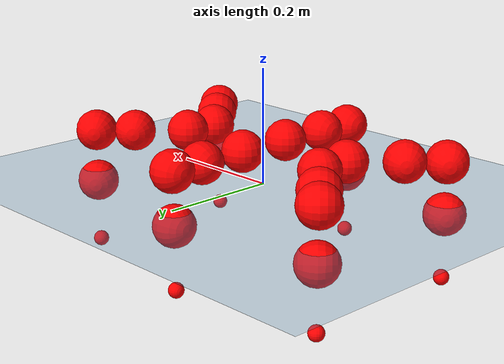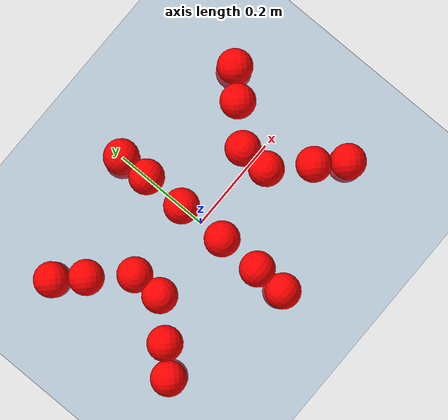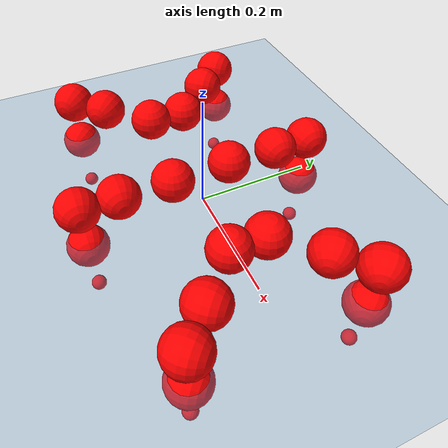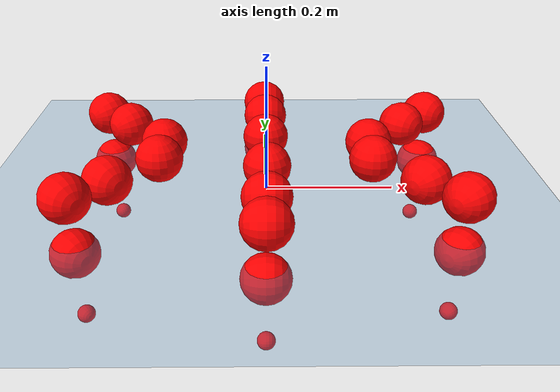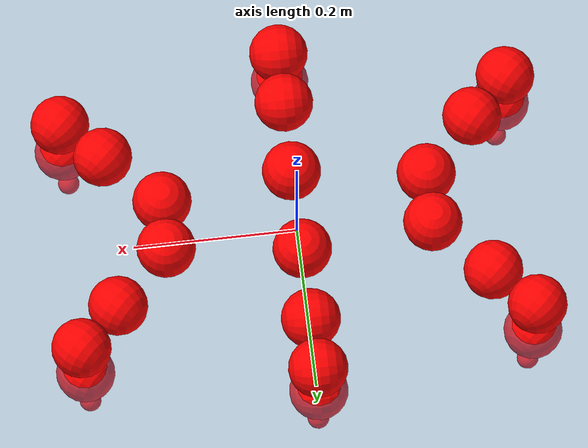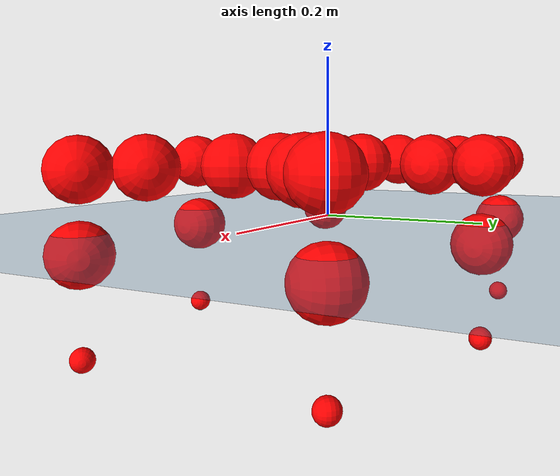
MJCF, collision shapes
<mujoco model="Golem">
  <compiler angle="radian" assetdir="assets" balanceinertia="true" inertiafromgeom="false"/>

  <option timestep="0.005" density="1.2" viscosity="2e-05"/>

  <size nkey="1"/>

  <visual>
    <quality shadowsize="8192"/>
    <map shadowclip="0.5"/>
  </visual>

  <default>
    <default class="/">
      <joint armature="0.01" damping="0.01" frictionloss="0.01"/>
      <geom contype="0" conaffinity="0" group="1" solref="-1000 -80"/>
      <site size="0.01 0.005 0.005" group="5"/>
      <general forcelimited="true" biastype="affine" gainprm="25" biasprm="0 -25 -0.5"/>
      <default class="visual">
        <geom type="mesh" group="2"/>
      </default>
      <default class="collision">
        <geom group="3"/>
      </default>
      <default class="foot">
        <geom size="0.01 0 0" condim="6" group="4" priority="1" solimp="0.015 1 0.01"/>
      </default>
      <default class="reward_collision_sphere">
        <geom group="5" rgba="1 0 0 1"/>
      </default>
    </default>
  </default>

  <asset>
    <texture type="skybox" colorspace="auto" name="//unnamed_texture_0" builtin="gradient" rgb1="0.95 0.95 0.95" rgb2="0.95 0.95 0.95" width="100" height="600"/>
    <texture type="2d" colorspace="auto" name="texplane" builtin="checker" rgb1="0.345 0.575 0.748" rgb2="0.345 0.575 0.748" markrgb="1 1 1" width="512" height="512"/>
    <material name="MatPlane" class="/" texture="texplane" texuniform="true" texrepeat="2 2" specular="0.9"/>
    <mesh name="body" class="/" file="body.stl" scale="0.001 0.001 0.001"/>
    <mesh name="coxa" class="/" file="coxa.stl" scale="0.001 0.001 0.001"/>
    <mesh name="femur" class="/" file="femur.stl" scale="0.001 0.001 0.001"/>
    <mesh name="tibia" class="/" file="tibia.stl" scale="0.001 0.001 0.001"/>
    <mesh name="tarsus" class="/" file="tarsus.stl" scale="0.001 0.001 0.001"/>
  </asset>

  <worldbody>
    <geom name="floor" class="/" size="100 100 0.125" type="plane" group="0" material="MatPlane"/>
    <light name="toplight_shadow" class="/" pos="0 0 5" dir="0.0990148 0.0990148 -0.990148" type="directional" ambient="0.04 0.04 0.04" diffuse="0.55 0.55 0.55" specular="0.12 0.12 0.12"/>
    <light name="toplight_fill" class="/" pos="0 0 5" dir="0.0990148 0.0990148 -0.990148" type="directional" castshadow="false" ambient="0.04 0.04 0.04" diffuse="0.3 0.3 0.3" specular="0.08 0.08 0.08"/>
    <body name="trunk" pos="-5.26064e-05 -0.000499926 0.000660463" quat="1 -7.74768e-06 2.09498e-05 -3.93012e-05">
      <inertial pos="-0.000489241 0.000574279 -0.00398546" quat="0.999997 -0.00164065 0.000271991 0.00178344" mass="2.64718" diaginertia="0.0115754 0.000893038 0.0120393"/>
      <joint name="//unnamed_joint_0" type="free"/>
      <geom name="//unnamed_geom_1" class="/" pos="0 0 0.0664191" quat="1 0 0 0" type="mesh" rgba="0.9 0.9 0.9 1" mesh="body"/>
      <site name="imu" class="/" pos="0.134067 0.00126481 0.110912" size="0.00893421"/>
      <camera name="track" class="/" pos="0 -1.22784 0" quat="0.707107 0.707107 0 0" mode="trackcom"/>
      <camera name="ego_camera" class="/" pos="0.13371 0 0.10378" quat="-0.5 -0.5 0.5 0.5"/>
      <body name="coxa_RR" pos="-0.182123 -0.052177 0.0684178" quat="0.383337 -7.35472e-05 -0.000333999 -0.923608">
        <inertial pos="-0.000147456 -0.000490886 0.00164177" quat="0.99999 7.44285e-05 -0.000640936 -0.00449287" mass="0.14368" diaginertia="0.0115642 0.000881336 0.012312"/>
        <joint name="coxa_joint_RR" class="/" pos="0 0 0" axis="0.000347583 -0.00442295 -0.99999" range="-3.15619 3.14688" armature="0.00911414" damping="0.00369456" frictionloss="0.00861164"/>
        <geom name="//unnamed_geom_2" class="/" type="mesh" rgba="0.2 0.2 0.2 1" mesh="coxa"/>
        <geom name="//unnamed_geom_3" class="reward_collision_sphere" size="0.0357368" pos="-0.0308562 0 0"/>
        <body name="femur_RR" pos="0.0619427 0.00182688 -0.000234075" quat="0.500238 -0.499461 0.500278 0.500022">
          <inertial pos="-7.83383e-05 0.00113421 -0.000911557" quat="0.999994 -0.00254428 0.000952733 0.0023529" mass="0.141655" diaginertia="0.0113112 0.000876264 0.0119398"/>
          <joint name="femur_joint_RR" class="/" pos="0 0 0" axis="0.000212439 -0.000978094 -0.999999" range="-3.14865 3.14851" armature="0.00904887" damping="0.00219937" frictionloss="0.00889305"/>
          <geom name="//unnamed_geom_4" class="/" type="mesh" rgba="0.9 0.9 0.9 1" mesh="femur"/>
          <geom name="//unnamed_geom_5" class="reward_collision_sphere" size="0.0357368"/>
          <body name="tibia_RR" pos="0.000510176 -0.067694 0.000870014" quat="-7.13236e-05 1 -1.38169e-05 8.87631e-06">
            <inertial pos="-0.000127748 0.00116684 0.000381023" quat="1 0.000101202 -0.000157849 -3.91288e-05" mass="0.143828" diaginertia="0.0115957 0.000877719 0.0120684"/>
            <joint name="tibia_joint_RR" class="/" pos="0 0 0" axis="-0.00126088 0.00480681 0.999988" range="-3.11963 3.14546" armature="0.0093678" damping="0" frictionloss="0.00966322"/>
            <geom name="//unnamed_geom_6" class="/" type="mesh" rgba="0.2 0.2 0.2 1" mesh="tibia"/>
            <geom name="//unnamed_geom_7" class="reward_collision_sphere" size="0.0357368"/>
            <body name="tarsus_RR" pos="0.0892948 1.49908e-05 -0.00174011" quat="1 -0.000270126 -0.000292483 4.24421e-05">
              <inertial pos="0.0603342 2.92608e-05 -0.000498086" quat="0.500533 0.499379 0.496682 0.503383" mass="0.141657" diaginertia="0.0114924 0.00086763 0.0121871"/>
              <joint name="tarsus_joint_RR" class="/" pos="0 0 0" axis="0.00135966 0.000170228 0.999999" range="-3.12095 3.13453" armature="0.00905341" damping="0.00354271" frictionloss="0.0091535"/>
              <geom name="//unnamed_geom_8" class="/" type="mesh" rgba="0.9 0.9 0.9 1" mesh="tarsus"/>
              <geom name="foot_1" class="foot" size="0.0087664" pos="0.115197 0 0" quat="0 -0.707107 0 0.707107"/>
              <geom name="//unnamed_geom_10" class="reward_collision_sphere" size="0.0357368"/>
              <geom name="//unnamed_geom_11" class="reward_collision_sphere" size="0.0134013" pos="0.110568 0 0"/>
              <site name="foot_1" class="foot" pos="0.115197 0 0" quat="0 -0.707107 0 0.707107" size="0.00893421"/>
            </body>
          </body>
        </body>
      </body>
      <body name="coxa_RM" pos="0.000845159 -0.0831534 0.0662421" quat="0.706981 -1.93823e-05 -0.000100868 -0.707233">
        <inertial pos="0.000516389 -0.000112379 1.22304e-05" quat="0.999975 -0.00623967 -0.0025534 0.00205654" mass="0.146972" diaginertia="0.0117013 0.00089968 0.0122372"/>
        <joint name="coxa_joint_RM" class="/" pos="0 0 0" axis="-0.000772599 0.00562022 -0.999984" range="-3.13861 3.15758" armature="0.00899611" damping="0.0126811" frictionloss="0.00865771"/>
        <geom name="//unnamed_geom_12" class="/" type="mesh" rgba="0.2 0.2 0.2 1" mesh="coxa"/>
        <geom name="//unnamed_geom_13" class="reward_collision_sphere" size="0.0357368" pos="-0.0308562 0 0"/>
        <body name="femur_RM" pos="0.0586483 -0.000842836 0.000161932" quat="0.500221 -0.4998 0.500013 0.499965">
          <inertial pos="-0.000106562 -0.000634846 9.13942e-05" quat="0.999997 -0.000830997 0.000713287 -0.00228061" mass="0.141105" diaginertia="0.011468 0.000876354 0.0121952"/>
          <joint name="femur_joint_RM" class="/" pos="0 0 0" axis="-0.000137701 0.000178817 -1" range="-3.13739 3.1195" armature="0.00870674" damping="0.00569222" frictionloss="0.00921687"/>
          <geom name="//unnamed_geom_14" class="/" type="mesh" rgba="0.9 0.9 0.9 1" mesh="femur"/>
          <geom name="//unnamed_geom_15" class="reward_collision_sphere" size="0.0357368"/>
          <body name="tibia_RM" pos="0.00119268 -0.0652101 -0.000728255" quat="-0.000116963 1 -0.000275413 0.000151326">
            <inertial pos="0.000100202 -0.000317459 -3.87732e-05" quat="0.999998 0.000798169 -0.0011184 -0.00123812" mass="0.144255" diaginertia="0.0115548 0.000869521 0.0121799"/>
            <joint name="tibia_joint_RM" class="/" pos="0 0 0" axis="0.00388054 -0.000859307 0.999992" range="-3.15665 3.12873" armature="0.0084534" damping="0.00539048" frictionloss="0.00934926"/>
            <geom name="//unnamed_geom_16" class="/" type="mesh" rgba="0.2 0.2 0.2 1" mesh="tibia"/>
            <geom name="//unnamed_geom_17" class="reward_collision_sphere" size="0.0357368"/>
            <body name="tarsus_RM" pos="0.0880948 -0.00128072 0.000956937" quat="1 -5.51508e-05 0.000183136 0.000128525">
              <inertial pos="0.0617823 0.000866083 0.000368208" quat="0.500249 0.499168 0.500381 0.500201" mass="0.143937" diaginertia="0.0116561 0.000881143 0.0121851"/>
              <joint name="tarsus_joint_RM" class="/" pos="0 0 0" axis="-0.00290973 0.00145313 0.999995" range="-3.15374 3.13194" armature="0.00935874" damping="0.00307226" frictionloss="0.00900231"/>
              <geom name="//unnamed_geom_18" class="/" type="mesh" rgba="0.9 0.9 0.9 1" mesh="tarsus"/>
              <geom name="foot_2" class="foot" size="0.00924856" pos="0.115197 0 0" quat="0 -0.707107 0 0.707107"/>
              <geom name="//unnamed_geom_20" class="reward_collision_sphere" size="0.0357368"/>
              <geom name="//unnamed_geom_21" class="reward_collision_sphere" size="0.0134013" pos="0.110568 0 0"/>
              <site name="foot_2" class="foot" pos="0.115197 0 0" quat="0 -0.707107 0 0.707107" size="0.00893421"/>
            </body>
          </body>
        </body>
      </body>
      <body name="coxa_RF" pos="0.182033 -0.0525996 0.0669185" quat="0.923854 -5.96012e-05 5.20151e-05 -0.382745">
        <inertial pos="-0.00089316 2.27652e-05 0.000278072" quat="0.999993 -0.000666464 0.00276853 -0.00237439" mass="0.143296" diaginertia="0.0117284 0.000896256 0.0122166"/>
        <joint name="coxa_joint_RF" class="/" pos="0 0 0" axis="0.00375947 -0.0012231 -0.999992" range="-3.13584 3.15236" armature="0.00873159" damping="0.0139646" frictionloss="0.0092495"/>
        <geom name="//unnamed_geom_22" class="/" type="mesh" rgba="0.2 0.2 0.2 1" mesh="coxa"/>
        <geom name="//unnamed_geom_23" class="reward_collision_sphere" size="0.0357368" pos="-0.0308562 0 0"/>
        <body name="femur_RF" pos="0.0615486 0.000383211 -0.000695177" quat="0.500031 -0.499878 0.500041 0.50005">
          <inertial pos="0.000657122 -0.000347641 0.000120238" quat="0.999989 -0.00431469 -0.00163259 0.000317979" mass="0.143496" diaginertia="0.0115909 0.000875085 0.0121453"/>
          <joint name="femur_joint_RF" class="/" pos="0 0 0" axis="0.000267291 0.00387346 -0.999992" range="-3.15827 3.13693" armature="0.009089" damping="0.00650624" frictionloss="0.00913948"/>
          <geom name="//unnamed_geom_24" class="/" type="mesh" rgba="0.9 0.9 0.9 1" mesh="femur"/>
          <geom name="//unnamed_geom_25" class="reward_collision_sphere" size="0.0357368"/>
          <body name="tibia_RF" pos="0.00115732 -0.0673722 -0.000176842" quat="-0.000463258 1 3.94778e-05 0.000219358">
            <inertial pos="-3.3262e-05 -0.000579768 -0.000167332" quat="0.999995 -0.000647084 0.00198779 0.00239674" mass="0.138193" diaginertia="0.0113771 0.00085159 0.0119883"/>
            <joint name="tibia_joint_RF" class="/" pos="0 0 0" axis="-0.00143604 -0.00184715 0.999997" range="-3.11991 3.13339" armature="0.00879961" damping="0" frictionloss="0.00930163"/>
            <geom name="//unnamed_geom_26" class="/" type="mesh" rgba="0.2 0.2 0.2 1" mesh="tibia"/>
            <geom name="//unnamed_geom_27" class="reward_collision_sphere" size="0.0357368"/>
            <body name="tarsus_RF" pos="0.0883254 0.000642242 -0.00039761" quat="1 3.65674e-05 -2.22911e-05 -7.59561e-05">
              <inertial pos="0.0608099 0.000554723 -0.000402833" quat="0.502017 0.498636 0.498078 0.501258" mass="0.144095" diaginertia="0.011787 0.000879854 0.0122616"/>
              <joint name="tarsus_joint_RF" class="/" pos="0 0 0" axis="-0.00980993 0.00302954 0.999947" range="-3.14986 3.13288" armature="0.00895695" damping="0.00297599" frictionloss="0.00853664"/>
              <geom name="//unnamed_geom_28" class="/" type="mesh" rgba="0.9 0.9 0.9 1" mesh="tarsus"/>
              <geom name="foot_3" class="foot" size="0.00864524" pos="0.115197 0 0" quat="0 -0.707107 0 0.707107"/>
              <geom name="//unnamed_geom_30" class="reward_collision_sphere" size="0.0357368"/>
              <geom name="//unnamed_geom_31" class="reward_collision_sphere" size="0.0134013" pos="0.110568 0 0"/>
              <site name="foot_3" class="foot" pos="0.115197 0 0" quat="0 -0.707107 0 0.707107" size="0.00893421"/>
            </body>
          </body>
        </body>
      </body>
      <body name="coxa_LR" pos="-0.182264 0.0541938 0.067294" quat="0.382952 -5.4468e-05 6.04951e-05 0.923768">
        <inertial pos="0.00121423 -0.000114228 0.000120687" quat="0.999999 0.000644105 0.00155443 0.000249907" mass="0.143583" diaginertia="0.0116329 0.000882807 0.0121101"/>
        <joint name="coxa_joint_LR" class="/" pos="0 0 0" axis="-0.00325988 -0.0015909 -0.999993" range="-3.11996 3.15395" armature="0.00883259" damping="0.0101185" frictionloss="0.00877064"/>
        <geom name="//unnamed_geom_32" class="/" type="mesh" rgba="0.2 0.2 0.2 1" mesh="coxa"/>
        <geom name="//unnamed_geom_33" class="reward_collision_sphere" size="0.0357368" pos="-0.0308562 0 0"/>
        <body name="femur_LR" pos="0.0632281 -0.00299704 -0.00136358" quat="0.500015 -0.500144 0.499879 0.499962">
          <inertial pos="0.000245641 -0.000564464 -0.000787493" quat="0.999985 -0.000127435 1.61371e-05 -0.00548131" mass="0.14416" diaginertia="0.0114711 0.000875517 0.0121222"/>
          <joint name="femur_joint_LR" class="/" pos="0 0 0" axis="0.00159496 0.00969997 0.999952" range="-3.12034 3.12355" armature="0.00962944" damping="0.00621132" frictionloss="0.00882426"/>
          <geom name="//unnamed_geom_34" class="/" type="mesh" rgba="0.9 0.9 0.9 1" mesh="femur"/>
          <geom name="//unnamed_geom_35" class="reward_collision_sphere" size="0.0357368"/>
          <body name="tibia_LR" pos="0.000531182 -0.0674576 -0.00167396" quat="-0.000130798 1 0.00016847 -0.00017391">
            <inertial pos="0.000746706 -0.000278901 0.00012037" quat="0.999997 0.00013122 -0.0017074 -0.00165429" mass="0.14411" diaginertia="0.0115879 0.000863577 0.0121948"/>
            <joint name="tibia_joint_LR" class="/" pos="0 0 0" axis="-0.00116729 0.000554895 -0.999999" range="-3.1176 3.13283" armature="0.00892356" damping="0.00816973" frictionloss="0.00894495"/>
            <geom name="//unnamed_geom_36" class="/" type="mesh" rgba="0.2 0.2 0.2 1" mesh="tibia"/>
            <geom name="//unnamed_geom_37" class="reward_collision_sphere" size="0.0357368"/>
            <body name="tarsus_LR" pos="0.0895891 0.00104295 0.00140442" quat="1 -8.24171e-05 -4.42488e-05 -2.09251e-05">
              <inertial pos="0.0624558 -7.245e-06 0.000651242" quat="0.499989 0.499956 0.499999 0.500055" mass="0.142141" diaginertia="0.0115998 0.000895849 0.0119812"/>
              <joint name="tarsus_joint_LR" class="/" pos="0 0 0" axis="-0.000750661 0.000892262 -0.999999" range="-3.14239 3.12282" armature="0.00896506" damping="0" frictionloss="0.00930318"/>
              <geom name="//unnamed_geom_38" class="/" type="mesh" rgba="0.9 0.9 0.9 1" mesh="tarsus"/>
              <geom name="foot_4" class="foot" size="0.00858687" pos="0.115197 0 0" quat="0.707107 0 -0.707107 0"/>
              <geom name="//unnamed_geom_40" class="reward_collision_sphere" size="0.0357368"/>
              <geom name="//unnamed_geom_41" class="reward_collision_sphere" size="0.0134013" pos="0.110568 0 0"/>
              <site name="foot_4" class="foot" pos="0.115197 0 0" quat="0.707107 0 -0.707107 0" size="0.00893421"/>
            </body>
          </body>
        </body>
      </body>
      <body name="coxa_LM" pos="-0.00064171 0.0794299 0.0673931" quat="0.707093 -7.51811e-05 0.000152129 0.70712">
        <inertial pos="0.000390296 -0.0001265 -0.000159466" quat="0.999998 -0.000538845 0.000694571 0.00197452" mass="0.143763" diaginertia="0.011346 0.000868891 0.0120128"/>
        <joint name="coxa_joint_LM" class="/" pos="0 0 0" axis="-0.00285093 0.00354336 -0.99999" range="-3.14676 3.14439" armature="0.00868891" damping="0.00576217" frictionloss="0.00895365"/>
        <geom name="//unnamed_geom_42" class="/" type="mesh" rgba="0.2 0.2 0.2 1" mesh="coxa"/>
        <geom name="//unnamed_geom_43" class="reward_collision_sphere" size="0.0357368" pos="-0.0308562 0 0"/>
        <body name="femur_LM" pos="0.0575731 0.000140815 -0.00110966" quat="0.500018 -0.499963 0.49995 0.500069">
          <inertial pos="0.000226085 8.9928e-07 -0.00157988" quat="0.999999 -0.0009985 4.39791e-05 0.000536429" mass="0.145171" diaginertia="0.0116564 0.000887932 0.0121325"/>
          <joint name="femur_joint_LM" class="/" pos="0 0 0" axis="-0.00655031 0.00211436 0.999976" range="-3.13946 3.11173" armature="0.0092631" damping="0.00165237" frictionloss="0.00881528"/>
          <geom name="//unnamed_geom_44" class="/" type="mesh" rgba="0.9 0.9 0.9 1" mesh="femur"/>
          <geom name="//unnamed_geom_45" class="reward_collision_sphere" size="0.0357368"/>
          <body name="tibia_LM" pos="-0.000104457 -0.0628012 0.00142116" quat="-0.000390891 1 -7.20848e-05 0.000318607">
            <inertial pos="-0.00107103 -0.000563701 -0.000281824" quat="0.999997 0.000822603 -0.00207183 0.000963099" mass="0.138125" diaginertia="0.0112619 0.000852071 0.0117714"/>
            <joint name="tibia_joint_LM" class="/" pos="0 0 0" axis="-0.00219232 -0.000136956 -0.999998" stiffness="0.000183928" range="-3.13715 3.15865" armature="0.00975027" damping="0" frictionloss="0.00897339"/>
            <geom name="//unnamed_geom_46" class="/" type="mesh" rgba="0.2 0.2 0.2 1" mesh="tibia"/>
            <geom name="//unnamed_geom_47" class="reward_collision_sphere" size="0.0357368"/>
            <body name="tarsus_LM" pos="0.0910122 -0.000515613 -0.00122661" quat="1 -8.87784e-05 0.000327203 2.07812e-05">
              <inertial pos="0.0633508 -0.000622172 -0.000233465" quat="0.50198 0.496086 0.501847 0.500065" mass="0.140138" diaginertia="0.0112923 0.000836065 0.0118936"/>
              <joint name="tarsus_joint_LM" class="/" pos="0 0 0" axis="-0.000988651 -0.001879 -0.999998" range="-3.13722 3.13894" armature="0.00876083" damping="0.0102246" frictionloss="0.00953467"/>
              <geom name="//unnamed_geom_48" class="/" type="mesh" rgba="0.9 0.9 0.9 1" mesh="tarsus"/>
              <geom name="foot_5" class="foot" size="0.00876555" pos="0.115197 0 0" quat="0.707107 0 -0.707107 0"/>
              <geom name="//unnamed_geom_50" class="reward_collision_sphere" size="0.0357368"/>
              <geom name="//unnamed_geom_51" class="reward_collision_sphere" size="0.0134013" pos="0.110568 0 0"/>
              <site name="foot_5" class="foot" pos="0.115197 0 0" quat="0.707107 0 -0.707107 0" size="0.00893421"/>
            </body>
          </body>
        </body>
      </body>
      <body name="coxa_LF" pos="0.18313 0.0512425 0.0673107" quat="0.92388 2.86947e-05 -1.46792e-05 0.382682">
        <inertial pos="-0.000709709 -0.00145588 0.000546194" quat="0.999999 0.00144138 -1.60802e-05 -0.000749473" mass="0.142988" diaginertia="0.0115175 0.000855578 0.0120186"/>
        <joint name="coxa_joint_LF" class="/" pos="0 0 0" axis="-0.000118163 0.00159864 -0.999999" range="-3.12122 3.13694" armature="0.00849804" damping="0" frictionloss="0.00901647"/>
        <geom name="//unnamed_geom_52" class="/" type="mesh" rgba="0.2 0.2 0.2 1" mesh="coxa"/>
        <geom name="//unnamed_geom_53" class="reward_collision_sphere" size="0.0357368" pos="-0.0308562 0 0"/>
        <body name="femur_LF" pos="0.0615554 0.00142928 5.58267e-05" quat="0.500031 -0.499921 0.500098 0.499949">
          <inertial pos="-0.000196918 0.000741228 -0.000279697" quat="1 0.000376549 5.09858e-05 -0.000201158" mass="0.140956" diaginertia="0.0112699 0.000865681 0.0119514"/>
          <joint name="femur_joint_LF" class="/" pos="0 0 0" axis="0.00495273 -0.000151768 0.999988" range="-3.12039 3.13825" armature="0.0090681" damping="0" frictionloss="0.0090427"/>
          <geom name="//unnamed_geom_54" class="/" type="mesh" rgba="0.9 0.9 0.9 1" mesh="femur"/>
          <geom name="//unnamed_geom_55" class="reward_collision_sphere" size="0.0357368"/>
          <body name="tibia_LF" pos="-5.16137e-05 -0.0680402 -0.000357731" quat="-0.000309394 1 -1.80059e-05 0.00039063">
            <inertial pos="-0.000798332 0.000919525 0.000904342" quat="1 -0.000109776 -0.000130923 -0.000120177" mass="0.14125" diaginertia="0.0115798 0.000875183 0.012157"/>
            <joint name="tibia_joint_LF" class="/" pos="0 0 0" axis="0.00238417 0.00244546 -0.999994" range="-3.13885 3.13944" armature="0.00934975" damping="0" frictionloss="0.00885021"/>
            <geom name="//unnamed_geom_56" class="/" type="mesh" rgba="0.2 0.2 0.2 1" mesh="tibia"/>
            <geom name="//unnamed_geom_57" class="reward_collision_sphere" size="0.0357368"/>
            <body name="tarsus_LF" pos="0.0920805 0.000819803 -0.000735786" quat="1 2.47031e-05 0.000103938 -2.70764e-05">
              <inertial pos="0.0616946 0.000183707 0.000155346" quat="0.495698 0.497172 0.506639 0.500421" mass="0.144402" diaginertia="0.011535 0.000875046 0.0119989"/>
              <joint name="tarsus_joint_LF" class="/" pos="0 0 0" axis="0.00750298 0.00183428 -0.99997" stiffness="0.0301363" range="-3.15705 3.1452" armature="0.00883548" damping="0.0252483" frictionloss="0.00936023"/>
              <geom name="//unnamed_geom_58" class="/" type="mesh" rgba="0.9 0.9 0.9 1" mesh="tarsus"/>
              <geom name="foot_6" class="foot" size="0.00905402" pos="0.115197 0 0" quat="0.707107 0 -0.707107 0"/>
              <geom name="//unnamed_geom_60" class="reward_collision_sphere" size="0.0357368"/>
              <geom name="//unnamed_geom_61" class="reward_collision_sphere" size="0.0134013" pos="0.110568 0 0"/>
              <site name="foot_6" class="foot" pos="0.115197 0 0" quat="0.707107 0 -0.707107 0" size="0.00893421"/>
            </body>
          </body>
        </body>
      </body>
    </body>
  </worldbody>

  <contact>
    <pair class="/" geom1="floor" geom2="foot_1" name="//unnamed_contact_0"/>
    <pair class="/" geom1="floor" geom2="foot_2" name="//unnamed_contact_1"/>
    <pair class="/" geom1="floor" geom2="foot_3" name="//unnamed_contact_2"/>
    <pair class="/" geom1="floor" geom2="foot_4" name="//unnamed_contact_3"/>
    <pair class="/" geom1="floor" geom2="foot_5" name="//unnamed_contact_4"/>
    <pair class="/" geom1="floor" geom2="foot_6" name="//unnamed_contact_5"/>
  </contact>

  <actuator>
    <general name="coxa_joint_RR" class="/" joint="coxa_joint_RR" forcerange="-6.51473 6.51473" gainprm="21.5695" biasprm="0 -21.5695 -0.460766"/>
    <general name="femur_joint_RR" class="/" joint="femur_joint_RR" forcerange="-6.48545 6.48545" gainprm="21.5695" biasprm="0 -21.5695 -0.460766"/>
    <general name="tibia_joint_RR" class="/" joint="tibia_joint_RR" forcerange="-6.48266 6.48266" gainprm="21.5695" biasprm="0 -21.5695 -0.460766"/>
    <general name="tarsus_joint_RR" class="/" joint="tarsus_joint_RR" forcerange="-6.54504 6.54504" gainprm="21.5695" biasprm="0 -21.5695 -0.460766"/>
    <general name="coxa_joint_RM" class="/" joint="coxa_joint_RM" forcerange="-6.71875 6.71875" gainprm="21.5695" biasprm="0 -21.5695 -0.460766"/>
    <general name="femur_joint_RM" class="/" joint="femur_joint_RM" forcerange="-6.55664 6.55664" gainprm="21.5695" biasprm="0 -21.5695 -0.460766"/>
    <general name="tibia_joint_RM" class="/" joint="tibia_joint_RM" forcerange="-6.44604 6.44604" gainprm="21.5695" biasprm="0 -21.5695 -0.460766"/>
    <general name="tarsus_joint_RM" class="/" joint="tarsus_joint_RM" forcerange="-6.3037 6.3037" gainprm="21.5695" biasprm="0 -21.5695 -0.460766"/>
    <general name="coxa_joint_RF" class="/" joint="coxa_joint_RF" forcerange="-6.50478 6.50478" gainprm="21.5695" biasprm="0 -21.5695 -0.460766"/>
    <general name="femur_joint_RF" class="/" joint="femur_joint_RF" forcerange="-6.65052 6.65052" gainprm="21.5695" biasprm="0 -21.5695 -0.460766"/>
    <general name="tibia_joint_RF" class="/" joint="tibia_joint_RF" forcerange="-6.36441 6.36441" gainprm="21.5695" biasprm="0 -21.5695 -0.460766"/>
    <general name="tarsus_joint_RF" class="/" joint="tarsus_joint_RF" forcerange="-6.64577 6.64577" gainprm="21.5695" biasprm="0 -21.5695 -0.460766"/>
    <general name="coxa_joint_LR" class="/" joint="coxa_joint_LR" forcerange="-6.57141 6.57141" gainprm="21.5695" biasprm="0 -21.5695 -0.460766"/>
    <general name="femur_joint_LR" class="/" joint="femur_joint_LR" forcerange="-6.50247 6.50247" gainprm="21.5695" biasprm="0 -21.5695 -0.460766"/>
    <general name="tibia_joint_LR" class="/" joint="tibia_joint_LR" forcerange="-6.44978 6.44978" gainprm="21.5695" biasprm="0 -21.5695 -0.460766"/>
    <general name="tarsus_joint_LR" class="/" joint="tarsus_joint_LR" forcerange="-6.46437 6.46437" gainprm="21.5695" biasprm="0 -21.5695 -0.460766"/>
    <general name="coxa_joint_LM" class="/" joint="coxa_joint_LM" forcerange="-6.45778 6.45778" gainprm="21.5695" biasprm="0 -21.5695 -0.460766"/>
    <general name="femur_joint_LM" class="/" joint="femur_joint_LM" forcerange="-6.42304 6.42304" gainprm="21.5695" biasprm="0 -21.5695 -0.460766"/>
    <general name="tibia_joint_LM" class="/" joint="tibia_joint_LM" forcerange="-6.51116 6.51116" gainprm="21.5695" biasprm="0 -21.5695 -0.460766"/>
    <general name="tarsus_joint_LM" class="/" joint="tarsus_joint_LM" forcerange="-6.31649 6.31649" gainprm="21.5695" biasprm="0 -21.5695 -0.460766"/>
    <general name="coxa_joint_LF" class="/" joint="coxa_joint_LF" forcerange="-6.75339 6.75339" gainprm="21.5695" biasprm="0 -21.5695 -0.460766"/>
    <general name="femur_joint_LF" class="/" joint="femur_joint_LF" forcerange="-6.50796 6.50796" gainprm="21.5695" biasprm="0 -21.5695 -0.460766"/>
    <general name="tibia_joint_LF" class="/" joint="tibia_joint_LF" forcerange="-6.57509 6.57509" gainprm="21.5695" biasprm="0 -21.5695 -0.460766"/>
    <general name="tarsus_joint_LF" class="/" joint="tarsus_joint_LF" forcerange="-6.50299 6.50299" gainprm="21.5695" biasprm="0 -21.5695 -0.460766"/>
  </actuator>

  <sensor>
    <gyro site="imu" name="imu_angular_velocity"/>
    <velocimeter site="imu" name="imu_linear_velocity"/>
    <framelinvel objtype="site" objname="foot_1" name="foot_1_global_linear_velocity"/>
    <framelinvel objtype="site" objname="foot_2" name="foot_2_global_linear_velocity"/>
    <framelinvel objtype="site" objname="foot_3" name="foot_3_global_linear_velocity"/>
    <framelinvel objtype="site" objname="foot_4" name="foot_4_global_linear_velocity"/>
    <framelinvel objtype="site" objname="foot_5" name="foot_5_global_linear_velocity"/>
    <framelinvel objtype="site" objname="foot_6" name="foot_6_global_linear_velocity"/>
  </sensor>

  <keyframe>
    <key name="home" qpos="0 0 0.1457 1 0 0 0 0 0 0 0 0 0 0 0 0 0 0 0 0 0 0 0 0 0 0 0 0 0 0 0"/>
  </keyframe>
</mujoco>
